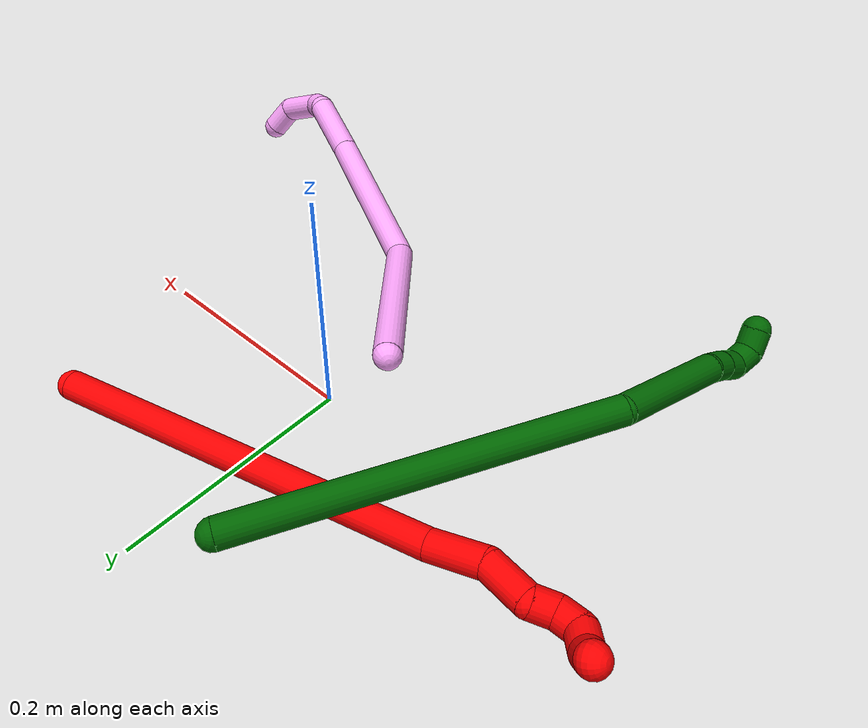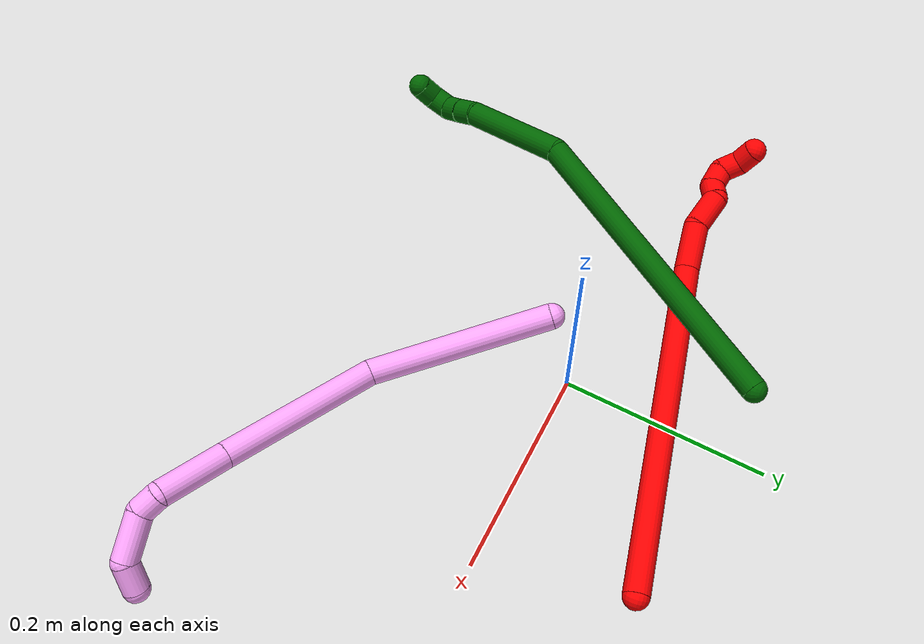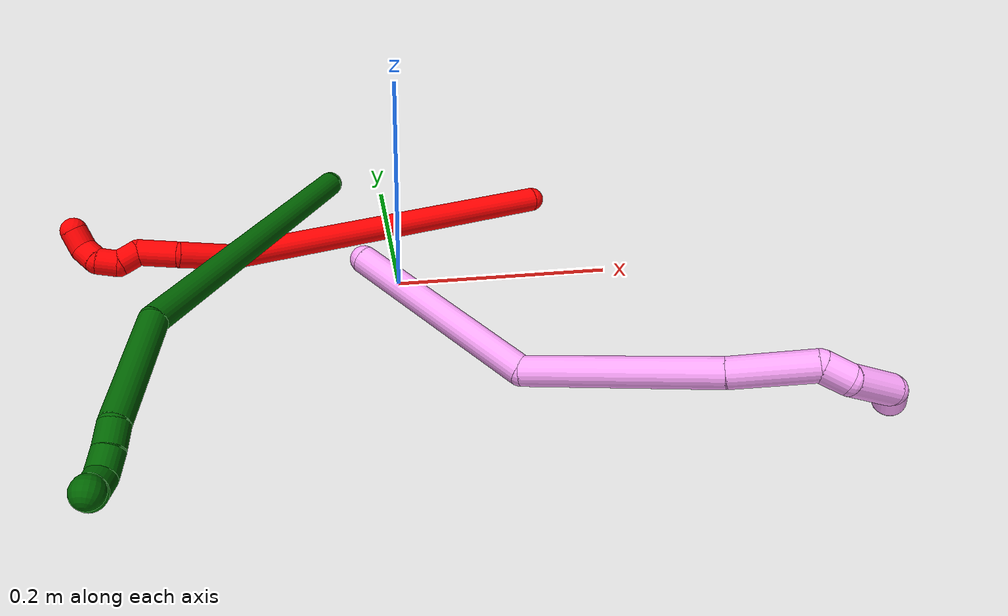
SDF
<sdf version="1.7">
 <world name="default">
  <model name="photoneo_s_sensor">
   <static>1</static>
   <pose>0 0 2 1.57079 1.57079 3.14159</pose>
   <link name="link">
    <inertial><mass>0.1</mass></inertial>
    <sensor name="sensor" type="depth">
     <update_rate>30</update_rate>
     <camera>
      <horizontal_fov>1.22</horizontal_fov>
      <image><width>1920</width><height>1200</height><format>B8G8R8</format></image>
      <clip><near>0.1</near><far>4</far></clip>
      <depth_camera><output>points</output></depth_camera>
     </camera>
     <plugin name="camera_plugin" filename="libgazebo_ros_depth_camera.so">
      <baseline>0.2</baseline>
      <alwaysOn>1</alwaysOn>
      <updateRate>0.0</updateRate>
      <cameraName>camera_ir</cameraName>
      <imageTopicName>/camera/color/image_raw</imageTopicName>
      <cameraInfoTopicName>/camera/color/camera_info</cameraInfoTopicName>
      <depthImageTopicName>/camera/depth/image_raw</depthImageTopicName>
      <depthImageCameraInfoTopicName>/camera/depth/camera_info</depthImageCameraInfoTopicName>
      <pointCloudTopicName>/camera/depth/points</pointCloudTopicName>
      <frameName>fr_optical</frameName>
      <pointCloudCutoff>0.1</pointCloudCutoff>
      <pointCloudCutoffMax>2.0</pointCloudCutoffMax>
      <distortionK1>0</distortionK1>
      <distortionK2>0</distortionK2>
      <distortionK3>0</distortionK3>
      <distortionT1>0</distortionT1>
      <distortionT2>0</distortionT2>
      <CxPrime>0</CxPrime>
      <Cx>0</Cx>
      <Cy>0</Cy>
      <focalLength>0</focalLength>
      <hackBaseline>0</hackBaseline>
     </plugin>
    </sensor>
   </link>
  </model>
  <model name="bin">
   <static>1</static>
   <link name="bottom">
    <collision name="collision-bottom">
     <pose>0 0 -0.01 0 -0 0</pose>
     <geometry><box><size>0.8 0.6 0.02</size></box></geometry>
     <surface>
      <friction><ode><mu>100</mu><mu2>100</mu2></ode></friction>
      <contact><collide_bitmask>65535</collide_bitmask></contact>
     </surface>
    </collision>
   </link>
   <link name="west_wall">
    <collision name="collision-west_wall">
     <pose>-0.41 0 0.1 0 -0 0</pose>
     <geometry><box><size>0.02 0.6 0.2</size></box></geometry>
     <surface>
      <friction><ode><mu>100</mu><mu2>100</mu2></ode></friction>
      <contact><collide_bitmask>65535</collide_bitmask></contact>
     </surface>
    </collision>
   </link>
   <link name="east_wall">
    <collision name="collision-east_wall">
     <pose>0.41 0 0.1 0 -0 0</pose>
     <geometry><box><size>0.02 0.6 0.2</size></box></geometry>
     <surface>
      <friction><ode><mu>100</mu><mu2>100</mu2></ode></friction>
      <contact><collide_bitmask>65535</collide_bitmask></contact>
     </surface>
    </collision>
   </link>
   <link name="south_wall">
    <collision name="collision-south_wall">
     <pose>0 -0.31 0.1 0 -0 0</pose>
     <geometry><box><size>0.8 0.02 0.2</size></box></geometry>
     <surface>
      <friction><ode><mu>100</mu><mu2>100</mu2></ode></friction>
      <contact><collide_bitmask>65535</collide_bitmask></contact>
     </surface>
    </collision>
   </link>
   <link name="north_wall">
    <collision name="collision-north_wall">
     <pose>0 0.31 0.1 0 -0 0</pose>
     <geometry><box><size>0.8 0.02 0.2</size></box></geometry>
     <surface>
      <friction><ode><mu>100</mu><mu2>100</mu2></ode></friction>
      <contact><collide_bitmask>65535</collide_bitmask></contact>
     </surface>
    </collision>
   </link>
  </model>
  <model name="2">
   <static>0</static>
   <link name="2">
    <collision name="collision-cylinder-e_1_1_4">
     <pose>-0.08597 -0.002961 0.142561 0.020765 -0.542554 -0.005776</pose>
     <geometry><cylinder><radius>0.0125</radius><length>0.333006</length></cylinder></geometry>
     <surface>
      <friction><ode><mu>1.16</mu><mu2>1.16</mu2><slip1>0</slip1><slip2>0</slip2></ode></friction>
      <contact><ode><kp>1e+06</kp><kd>1</kd><max_vel>0</max_vel><min_depth>0.001</min_depth></ode></contact>
     </surface>
    </collision>
    <visual name="visual-cylinder-e_1_1_4">
     <pose>-0.08597 -0.002961 0.142561 0.020765 -0.542554 -0.005776</pose>
     <geometry><cylinder><radius>0.0125</radius><length>0.333006</length></cylinder></geometry>
     <material><ambient>1 0 0 1</ambient></material>
    </visual>
    <collision name="collision-cylinder-e_2_4_5">
     <pose>-0.178803 -0.006488 0.30804 0.024716 -0.290923 -0.003621</pose>
     <geometry><cylinder><radius>0.0125</radius><length>0.047859</length></cylinder></geometry>
     <surface>
      <friction><ode><mu>1.16</mu><mu2>1.16</mu2><slip1>0</slip1><slip2>0</slip2></ode></friction>
      <contact><ode><kp>1e+06</kp><kd>1</kd><max_vel>0</max_vel><min_depth>0.001</min_depth></ode></contact>
     </surface>
    </collision>
    <visual name="visual-cylinder-e_2_4_5">
     <pose>-0.178803 -0.006488 0.30804 0.024716 -0.290923 -0.003621</pose>
     <geometry><cylinder><radius>0.0125</radius><length>0.047859</length></cylinder></geometry>
     <material><ambient>1 0 0 1</ambient></material>
    </visual>
    <collision name="collision-cylinder-e_3_5_6">
     <pose>-0.192619 -0.000263 0.347358 -0.392575 -0.373251 0.075059</pose>
     <geometry><cylinder><radius>0.0125</radius><length>0.038129</length></cylinder></geometry>
     <surface>
      <friction><ode><mu>1.16</mu><mu2>1.16</mu2><slip1>0</slip1><slip2>0</slip2></ode></friction>
      <contact><ode><kp>1e+06</kp><kd>1</kd><max_vel>0</max_vel><min_depth>0.001</min_depth></ode></contact>
     </surface>
    </collision>
    <visual name="visual-cylinder-e_3_5_6">
     <pose>-0.192619 -0.000263 0.347358 -0.392575 -0.373251 0.075059</pose>
     <geometry><cylinder><radius>0.0125</radius><length>0.038129</length></cylinder></geometry>
     <material><ambient>1 0 0 1</ambient></material>
    </visual>
    <collision name="collision-cylinder-e_4_6_7">
     <pose>-0.207221 0.004468 0.370305 0.304868 -0.839622 -0.136926</pose>
     <geometry><cylinder><radius>0.0125</radius><length>0.020554</length></cylinder></geometry>
     <surface>
      <friction><ode><mu>1.16</mu><mu2>1.16</mu2><slip1>0</slip1><slip2>0</slip2></ode></friction>
      <contact><ode><kp>1e+06</kp><kd>1</kd><max_vel>0</max_vel><min_depth>0.001</min_depth></ode></contact>
     </surface>
    </collision>
    <visual name="visual-cylinder-e_4_6_7">
     <pose>-0.207221 0.004468 0.370305 0.304868 -0.839622 -0.136926</pose>
     <geometry><cylinder><radius>0.0125</radius><length>0.020554</length></cylinder></geometry>
     <material><ambient>1 0 0 1</ambient></material>
    </visual>
    <collision name="collision-cylinder-e_5_7_8">
     <pose>-0.217759 0.005194 0.386165 -0.290572 -0.288807 0.042547</pose>
     <geometry><cylinder><radius>0.0125</radius><length>0.020283</length></cylinder></geometry>
     <surface>
      <friction><ode><mu>1.16</mu><mu2>1.16</mu2><slip1>0</slip1><slip2>0</slip2></ode></friction>
      <contact><ode><kp>1e+06</kp><kd>1</kd><max_vel>0</max_vel><min_depth>0.001</min_depth></ode></contact>
     </surface>
    </collision>
    <visual name="visual-cylinder-e_5_7_8">
     <pose>-0.217759 0.005194 0.386165 -0.290572 -0.288807 0.042547</pose>
     <geometry><cylinder><radius>0.0125</radius><length>0.020283</length></cylinder></geometry>
     <material><ambient>1 0 0 1</ambient></material>
    </visual>
    <collision name="collision-cylinder-e_6_8_9">
     <pose>-0.219443 0.01565 0.40181 -0.880827 0.120481 -0.056835</pose>
     <geometry><cylinder><radius>0.0125</radius><length>0.020037</length></cylinder></geometry>
     <surface>
      <friction><ode><mu>1.16</mu><mu2>1.16</mu2><slip1>0</slip1><slip2>0</slip2></ode></friction>
      <contact><ode><kp>1e+06</kp><kd>1</kd><max_vel>0</max_vel><min_depth>0.001</min_depth></ode></contact>
     </surface>
    </collision>
    <visual name="visual-cylinder-e_6_8_9">
     <pose>-0.219443 0.01565 0.40181 -0.880827 0.120481 -0.056835</pose>
     <geometry><cylinder><radius>0.0125</radius><length>0.020037</length></cylinder></geometry>
     <material><ambient>1 0 0 1</ambient></material>
    </visual>
    <collision name="collision-cylinder-e_7_9_2">
     <pose>-0.212252 0.027376 0.415142 -0.524962 0.637064 -0.176739</pose>
     <geometry><cylinder><radius>0.0125</radius><length>0.020132</length></cylinder></geometry>
     <surface>
      <friction><ode><mu>1.16</mu><mu2>1.16</mu2><slip1>0</slip1><slip2>0</slip2></ode></friction>
      <contact><ode><kp>1e+06</kp><kd>1</kd><max_vel>0</max_vel><min_depth>0.001</min_depth></ode></contact>
     </surface>
    </collision>
    <visual name="visual-cylinder-e_7_9_2">
     <pose>-0.212252 0.027376 0.415142 -0.524962 0.637064 -0.176739</pose>
     <geometry><cylinder><radius>0.0125</radius><length>0.020132</length></cylinder></geometry>
     <material><ambient>1 0 0 1</ambient></material>
    </visual>
    <collision name="collision-sphere-2">
     <pose>-0.206264 0.031432 0.422144 0 -0 0</pose>
     <geometry><sphere><radius>0.0125</radius></sphere></geometry>
     <surface>
      <friction><ode><mu>1.16</mu><mu2>1.16</mu2><slip1>0</slip1><slip2>0</slip2></ode></friction>
      <contact><ode><kp>1e+06</kp><kd>1</kd><max_vel>0</max_vel><min_depth>0.001</min_depth></ode></contact>
     </surface>
    </collision>
    <visual name="visual-sphere-2">
     <pose>-0.206264 0.031432 0.422144 0 -0 0</pose>
     <geometry><sphere><radius>0.0125</radius></sphere></geometry>
     <material><ambient>1 0 0 1</ambient></material>
    </visual>
    <collision name="collision-sphere-9">
     <pose>-0.218239 0.023321 0.408141 0 -0 0</pose>
     <geometry><sphere><radius>0.0125</radius></sphere></geometry>
     <surface>
      <friction><ode><mu>1.16</mu><mu2>1.16</mu2><slip1>0</slip1><slip2>0</slip2></ode></friction>
      <contact><ode><kp>1e+06</kp><kd>1</kd><max_vel>0</max_vel><min_depth>0.001</min_depth></ode></contact>
     </surface>
    </collision>
    <visual name="visual-sphere-9">
     <pose>-0.218239 0.023321 0.408141 0 -0 0</pose>
     <geometry><sphere><radius>0.0125</radius></sphere></geometry>
     <material><ambient>1 0 0 1</ambient></material>
    </visual>
    <collision name="collision-sphere-4">
     <pose>-0.17194 -0.005921 0.285123 0 -0 0</pose>
     <geometry><sphere><radius>0.0125</radius></sphere></geometry>
     <surface>
      <friction><ode><mu>1.16</mu><mu2>1.16</mu2><slip1>0</slip1><slip2>0</slip2></ode></friction>
      <contact><ode><kp>1e+06</kp><kd>1</kd><max_vel>0</max_vel><min_depth>0.001</min_depth></ode></contact>
     </surface>
    </collision>
    <visual name="visual-sphere-4">
     <pose>-0.17194 -0.005921 0.285123 0 -0 0</pose>
     <geometry><sphere><radius>0.0125</radius></sphere></geometry>
     <material><ambient>1 0 0 1</ambient></material>
    </visual>
    <collision name="collision-sphere-1">
     <geometry><sphere><radius>0.0125</radius></sphere></geometry>
     <surface>
      <friction><ode><mu>1.16</mu><mu2>1.16</mu2><slip1>0</slip1><slip2>0</slip2></ode></friction>
      <contact><ode><kp>1e+06</kp><kd>1</kd><max_vel>0</max_vel><min_depth>0.001</min_depth></ode></contact>
     </surface>
    </collision>
    <visual name="visual-sphere-1">
     <geometry><sphere><radius>0.0125</radius></sphere></geometry>
     <material><ambient>1 0 0 1</ambient></material>
    </visual>
    <collision name="collision-sphere-8">
     <pose>-0.220648 0.007979 0.395479 0 -0 0</pose>
     <geometry><sphere><radius>0.0125</radius></sphere></geometry>
     <surface>
      <friction><ode><mu>1.16</mu><mu2>1.16</mu2><slip1>0</slip1><slip2>0</slip2></ode></friction>
      <contact><ode><kp>1e+06</kp><kd>1</kd><max_vel>0</max_vel><min_depth>0.001</min_depth></ode></contact>
     </surface>
    </collision>
    <visual name="visual-sphere-8">
     <pose>-0.220648 0.007979 0.395479 0 -0 0</pose>
     <geometry><sphere><radius>0.0125</radius></sphere></geometry>
     <material><ambient>1 0 0 1</ambient></material>
    </visual>
    <collision name="collision-sphere-5">
     <pose>-0.185667 -0.007054 0.330956 0 -0 0</pose>
     <geometry><sphere><radius>0.0125</radius></sphere></geometry>
     <surface>
      <friction><ode><mu>1.16</mu><mu2>1.16</mu2><slip1>0</slip1><slip2>0</slip2></ode></friction>
      <contact><ode><kp>1e+06</kp><kd>1</kd><max_vel>0</max_vel><min_depth>0.001</min_depth></ode></contact>
     </surface>
    </collision>
    <visual name="visual-sphere-5">
     <pose>-0.185667 -0.007054 0.330956 0 -0 0</pose>
     <geometry><sphere><radius>0.0125</radius></sphere></geometry>
     <material><ambient>1 0 0 1</ambient></material>
    </visual>
    <collision name="collision-sphere-6">
     <pose>-0.199571 0.006528 0.363759 0 -0 0</pose>
     <geometry><sphere><radius>0.0125</radius></sphere></geometry>
     <surface>
      <friction><ode><mu>1.16</mu><mu2>1.16</mu2><slip1>0</slip1><slip2>0</slip2></ode></friction>
      <contact><ode><kp>1e+06</kp><kd>1</kd><max_vel>0</max_vel><min_depth>0.001</min_depth></ode></contact>
     </surface>
    </collision>
    <visual name="visual-sphere-6">
     <pose>-0.199571 0.006528 0.363759 0 -0 0</pose>
     <geometry><sphere><radius>0.0125</radius></sphere></geometry>
     <material><ambient>1 0 0 1</ambient></material>
    </visual>
    <collision name="collision-sphere-7">
     <pose>-0.214871 0.002408 0.376851 0 -0 0</pose>
     <geometry><sphere><radius>0.0125</radius></sphere></geometry>
     <surface>
      <friction><ode><mu>1.16</mu><mu2>1.16</mu2><slip1>0</slip1><slip2>0</slip2></ode></friction>
      <contact><ode><kp>1e+06</kp><kd>1</kd><max_vel>0</max_vel><min_depth>0.001</min_depth></ode></contact>
     </surface>
    </collision>
    <visual name="visual-sphere-7">
     <pose>-0.214871 0.002408 0.376851 0 -0 0</pose>
     <geometry><sphere><radius>0.0125</radius></sphere></geometry>
     <material><ambient>1 0 0 1</ambient></material>
    </visual>
    <inertial>
     <pose>-0.123752 -0.000489 0.214626 0 -0 0</pose>
     <mass>0.5</mass>
     <inertia>
      <ixx>0.002636</ixx>
      <ixy>0</ixy>
      <ixz>0</ixz>
      <iyy>0.003099</iyy>
      <iyz>0</iyz>
      <izz>0.001686</izz>
     </inertia>
    </inertial>
   </link>
   <pose>0.160036 0.14107 0.01186 -0.322479 -1.00872 0.520316</pose>
  </model>
  <model name="4">
   <static>0</static>
   <link name="4">
    <collision name="collision-cylinder-e_1_1_4">
     <pose>0.009214 0.01263 0.089012 -0.140946 0.102132 -0.007216</pose>
     <geometry><cylinder><radius>0.0125</radius><length>0.180749</length></cylinder></geometry>
     <surface>
      <friction><ode><mu>1.16</mu><mu2>1.16</mu2><slip1>0</slip1><slip2>0</slip2></ode></friction>
      <contact><ode><kp>1e+06</kp><kd>1</kd><max_vel>0</max_vel><min_depth>0.001</min_depth></ode></contact>
     </surface>
    </collision>
    <visual name="visual-cylinder-e_1_1_4">
     <pose>0.009214 0.01263 0.089012 -0.140946 0.102132 -0.007216</pose>
     <geometry><cylinder><radius>0.0125</radius><length>0.180749</length></cylinder></geometry>
     <material><ambient>1 0.65098 0.996078 1</ambient></material>
    </visual>
    <collision name="collision-cylinder-e_2_4_5">
     <pose>0.023633 -0.008778 0.249012 0.447096 0.066019 0.015015</pose>
     <geometry><cylinder><radius>0.0125</radius><length>0.157797</length></cylinder></geometry>
     <surface>
      <friction><ode><mu>1.16</mu><mu2>1.16</mu2><slip1>0</slip1><slip2>0</slip2></ode></friction>
      <contact><ode><kp>1e+06</kp><kd>1</kd><max_vel>0</max_vel><min_depth>0.001</min_depth></ode></contact>
     </surface>
    </collision>
    <visual name="visual-cylinder-e_2_4_5">
     <pose>0.023633 -0.008778 0.249012 0.447096 0.066019 0.015015</pose>
     <geometry><cylinder><radius>0.0125</radius><length>0.157797</length></cylinder></geometry>
     <material><ambient>1 0.65098 0.996078 1</ambient></material>
    </visual>
    <collision name="collision-cylinder-e_3_5_6">
     <pose>0.031493 -0.059762 0.348382 0.538266 0.080153 0.022119</pose>
     <geometry><cylinder><radius>0.0125</radius><length>0.066326</length></cylinder></geometry>
     <surface>
      <friction><ode><mu>1.16</mu><mu2>1.16</mu2><slip1>0</slip1><slip2>0</slip2></ode></friction>
      <contact><ode><kp>1e+06</kp><kd>1</kd><max_vel>0</max_vel><min_depth>0.001</min_depth></ode></contact>
     </surface>
    </collision>
    <visual name="visual-cylinder-e_3_5_6">
     <pose>0.031493 -0.059762 0.348382 0.538266 0.080153 0.022119</pose>
     <geometry><cylinder><radius>0.0125</radius><length>0.066326</length></cylinder></geometry>
     <material><ambient>1 0.65098 0.996078 1</ambient></material>
    </visual>
    <collision name="collision-cylinder-e_4_6_7">
     <pose>0.030962 -0.076972 0.387328 0.024971 -0.292936 -0.003684</pose>
     <geometry><cylinder><radius>0.0125</radius><length>0.022074</length></cylinder></geometry>
     <surface>
      <friction><ode><mu>1.16</mu><mu2>1.16</mu2><slip1>0</slip1><slip2>0</slip2></ode></friction>
      <contact><ode><kp>1e+06</kp><kd>1</kd><max_vel>0</max_vel><min_depth>0.001</min_depth></ode></contact>
     </surface>
    </collision>
    <visual name="visual-cylinder-e_4_6_7">
     <pose>0.030962 -0.076972 0.387328 0.024971 -0.292936 -0.003684</pose>
     <geometry><cylinder><radius>0.0125</radius><length>0.022074</length></cylinder></geometry>
     <material><ambient>1 0.65098 0.996078 1</ambient></material>
    </visual>
    <collision name="collision-cylinder-e_5_7_8">
     <pose>0.012245 -0.083254 0.412739 0.385076 -0.769823 -0.157631</pose>
     <geometry><cylinder><radius>0.0125</radius><length>0.044625</length></cylinder></geometry>
     <surface>
      <friction><ode><mu>1.16</mu><mu2>1.16</mu2><slip1>0</slip1><slip2>0</slip2></ode></friction>
      <contact><ode><kp>1e+06</kp><kd>1</kd><max_vel>0</max_vel><min_depth>0.001</min_depth></ode></contact>
     </surface>
    </collision>
    <visual name="visual-cylinder-e_5_7_8">
     <pose>0.012245 -0.083254 0.412739 0.385076 -0.769823 -0.157631</pose>
     <geometry><cylinder><radius>0.0125</radius><length>0.044625</length></cylinder></geometry>
     <material><ambient>1 0.65098 0.996078 1</ambient></material>
    </visual>
    <collision name="collision-cylinder-e_6_8_2">
     <pose>-0.01728 -0.08813 0.429798 -0.476736 -1.39486 0.401709</pose>
     <geometry><cylinder><radius>0.0125</radius><length>0.02843</length></cylinder></geometry>
     <surface>
      <friction><ode><mu>1.16</mu><mu2>1.16</mu2><slip1>0</slip1><slip2>0</slip2></ode></friction>
      <contact><ode><kp>1e+06</kp><kd>1</kd><max_vel>0</max_vel><min_depth>0.001</min_depth></ode></contact>
     </surface>
    </collision>
    <visual name="visual-cylinder-e_6_8_2">
     <pose>-0.01728 -0.08813 0.429798 -0.476736 -1.39486 0.401709</pose>
     <geometry><cylinder><radius>0.0125</radius><length>0.02843</length></cylinder></geometry>
     <material><ambient>1 0.65098 0.996078 1</ambient></material>
    </visual>
    <collision name="collision-sphere-2">
     <pose>-0.031276 -0.086988 0.432009 0 -0 0</pose>
     <geometry><sphere><radius>0.0125</radius></sphere></geometry>
     <surface>
      <friction><ode><mu>1.16</mu><mu2>1.16</mu2><slip1>0</slip1><slip2>0</slip2></ode></friction>
      <contact><ode><kp>1e+06</kp><kd>1</kd><max_vel>0</max_vel><min_depth>0.001</min_depth></ode></contact>
     </surface>
    </collision>
    <visual name="visual-sphere-2">
     <pose>-0.031276 -0.086988 0.432009 0 -0 0</pose>
     <geometry><sphere><radius>0.0125</radius></sphere></geometry>
     <material><ambient>1 0.65098 0.996078 1</ambient></material>
    </visual>
    <collision name="collision-sphere-4">
     <pose>0.018428 0.025259 0.178024 0 -0 0</pose>
     <geometry><sphere><radius>0.0125</radius></sphere></geometry>
     <surface>
      <friction><ode><mu>1.16</mu><mu2>1.16</mu2><slip1>0</slip1><slip2>0</slip2></ode></friction>
      <contact><ode><kp>1e+06</kp><kd>1</kd><max_vel>0</max_vel><min_depth>0.001</min_depth></ode></contact>
     </surface>
    </collision>
    <visual name="visual-sphere-4">
     <pose>0.018428 0.025259 0.178024 0 -0 0</pose>
     <geometry><sphere><radius>0.0125</radius></sphere></geometry>
     <material><ambient>1 0.65098 0.996078 1</ambient></material>
    </visual>
    <collision name="collision-sphere-1">
     <geometry><sphere><radius>0.0125</radius></sphere></geometry>
     <surface>
      <friction><ode><mu>1.16</mu><mu2>1.16</mu2><slip1>0</slip1><slip2>0</slip2></ode></friction>
      <contact><ode><kp>1e+06</kp><kd>1</kd><max_vel>0</max_vel><min_depth>0.001</min_depth></ode></contact>
     </surface>
    </collision>
    <visual name="visual-sphere-1">
     <geometry><sphere><radius>0.0125</radius></sphere></geometry>
     <material><ambient>1 0.65098 0.996078 1</ambient></material>
    </visual>
    <collision name="collision-sphere-8">
     <pose>-0.003285 -0.089272 0.427587 0 -0 0</pose>
     <geometry><sphere><radius>0.0125</radius></sphere></geometry>
     <surface>
      <friction><ode><mu>1.16</mu><mu2>1.16</mu2><slip1>0</slip1><slip2>0</slip2></ode></friction>
      <contact><ode><kp>1e+06</kp><kd>1</kd><max_vel>0</max_vel><min_depth>0.001</min_depth></ode></contact>
     </surface>
    </collision>
    <visual name="visual-sphere-8">
     <pose>-0.003285 -0.089272 0.427587 0 -0 0</pose>
     <geometry><sphere><radius>0.0125</radius></sphere></geometry>
     <material><ambient>1 0.65098 0.996078 1</ambient></material>
    </visual>
    <collision name="collision-sphere-5">
     <pose>0.028838 -0.042815 0.32 0 -0 0</pose>
     <geometry><sphere><radius>0.0125</radius></sphere></geometry>
     <surface>
      <friction><ode><mu>1.16</mu><mu2>1.16</mu2><slip1>0</slip1><slip2>0</slip2></ode></friction>
      <contact><ode><kp>1e+06</kp><kd>1</kd><max_vel>0</max_vel><min_depth>0.001</min_depth></ode></contact>
     </surface>
    </collision>
    <visual name="visual-sphere-5">
     <pose>0.028838 -0.042815 0.32 0 -0 0</pose>
     <geometry><sphere><radius>0.0125</radius></sphere></geometry>
     <material><ambient>1 0.65098 0.996078 1</ambient></material>
    </visual>
    <collision name="collision-sphere-6">
     <pose>0.034149 -0.076708 0.376765 0 -0 0</pose>
     <geometry><sphere><radius>0.0125</radius></sphere></geometry>
     <surface>
      <friction><ode><mu>1.16</mu><mu2>1.16</mu2><slip1>0</slip1><slip2>0</slip2></ode></friction>
      <contact><ode><kp>1e+06</kp><kd>1</kd><max_vel>0</max_vel><min_depth>0.001</min_depth></ode></contact>
     </surface>
    </collision>
    <visual name="visual-sphere-6">
     <pose>0.034149 -0.076708 0.376765 0 -0 0</pose>
     <geometry><sphere><radius>0.0125</radius></sphere></geometry>
     <material><ambient>1 0.65098 0.996078 1</ambient></material>
    </visual>
    <collision name="collision-sphere-7">
     <pose>0.027774 -0.077236 0.397892 0 -0 0</pose>
     <geometry><sphere><radius>0.0125</radius></sphere></geometry>
     <surface>
      <friction><ode><mu>1.16</mu><mu2>1.16</mu2><slip1>0</slip1><slip2>0</slip2></ode></friction>
      <contact><ode><kp>1e+06</kp><kd>1</kd><max_vel>0</max_vel><min_depth>0.001</min_depth></ode></contact>
     </surface>
    </collision>
    <visual name="visual-sphere-7">
     <pose>0.027774 -0.077236 0.397892 0 -0 0</pose>
     <geometry><sphere><radius>0.0125</radius></sphere></geometry>
     <material><ambient>1 0.65098 0.996078 1</ambient></material>
    </visual>
    <inertial>
     <pose>0.016444 -0.021972 0.235352 0 -0 0</pose>
     <mass>0.5</mass>
     <inertia>
      <ixx>0.000864</ixx>
      <ixy>0</ixy>
      <ixz>0</ixz>
      <iyy>0.000826</iyy>
      <iyz>0</iyz>
      <izz>5.9e-05</izz>
     </inertia>
    </inertial>
   </link>
   <pose>-0.034152 -0.035505 0.048826 -1.81915 -0.750705 -2.08568</pose>
  </model>
  <model name="6">
   <static>0</static>
   <link name="6">
    <collision name="collision-cylinder-e_1_1_4">
     <pose>-0.074488 -0.046364 -0.129935 2.79885 -0.495079 -1.94066</pose>
     <geometry><cylinder><radius>0.0125</radius><length>0.313569</length></cylinder></geometry>
     <surface>
      <friction><ode><mu>1.16</mu><mu2>1.16</mu2><slip1>0</slip1><slip2>0</slip2></ode></friction>
      <contact><ode><kp>1e+06</kp><kd>1</kd><max_vel>0</max_vel><min_depth>0.001</min_depth></ode></contact>
     </surface>
    </collision>
    <visual name="visual-cylinder-e_1_1_4">
     <pose>-0.074488 -0.046364 -0.129935 2.79885 -0.495079 -1.94066</pose>
     <geometry><cylinder><radius>0.0125</radius><length>0.313569</length></cylinder></geometry>
     <material><ambient>0 0.392157 0.003922 1</ambient></material>
    </visual>
    <collision name="collision-cylinder-e_2_4_5">
     <pose>-0.154338 -0.105309 -0.311223 2.90134 -0.101053 -0.793466</pose>
     <geometry><cylinder><radius>0.0125</radius><length>0.106285</length></cylinder></geometry>
     <surface>
      <friction><ode><mu>1.16</mu><mu2>1.16</mu2><slip1>0</slip1><slip2>0</slip2></ode></friction>
      <contact><ode><kp>1e+06</kp><kd>1</kd><max_vel>0</max_vel><min_depth>0.001</min_depth></ode></contact>
     </surface>
    </collision>
    <visual name="visual-cylinder-e_2_4_5">
     <pose>-0.154338 -0.105309 -0.311223 2.90134 -0.101053 -0.793466</pose>
     <geometry><cylinder><radius>0.0125</radius><length>0.106285</length></cylinder></geometry>
     <material><ambient>0 0.392157 0.003922 1</ambient></material>
    </visual>
    <collision name="collision-cylinder-e_3_5_6">
     <pose>-0.159454 -0.118184 -0.37261 3.11231 0.024429 1.39066</pose>
     <geometry><cylinder><radius>0.0125</radius><length>0.020082</length></cylinder></geometry>
     <surface>
      <friction><ode><mu>1.16</mu><mu2>1.16</mu2><slip1>0</slip1><slip2>0</slip2></ode></friction>
      <contact><ode><kp>1e+06</kp><kd>1</kd><max_vel>0</max_vel><min_depth>0.001</min_depth></ode></contact>
     </surface>
    </collision>
    <visual name="visual-cylinder-e_3_5_6">
     <pose>-0.159454 -0.118184 -0.37261 3.11231 0.024429 1.39066</pose>
     <geometry><cylinder><radius>0.0125</radius><length>0.020082</length></cylinder></geometry>
     <material><ambient>0 0.392157 0.003922 1</ambient></material>
    </visual>
    <collision name="collision-cylinder-e_4_6_7">
     <pose>-0.159632 -0.118054 -0.392653 -3.09932 -0.042247 1.57025</pose>
     <geometry><cylinder><radius>0.0125</radius><length>0.020054</length></cylinder></geometry>
     <surface>
      <friction><ode><mu>1.16</mu><mu2>1.16</mu2><slip1>0</slip1><slip2>0</slip2></ode></friction>
      <contact><ode><kp>1e+06</kp><kd>1</kd><max_vel>0</max_vel><min_depth>0.001</min_depth></ode></contact>
     </surface>
    </collision>
    <visual name="visual-cylinder-e_4_6_7">
     <pose>-0.159632 -0.118054 -0.392653 -3.09932 -0.042247 1.57025</pose>
     <geometry><cylinder><radius>0.0125</radius><length>0.020054</length></cylinder></geometry>
     <material><ambient>0 0.392157 0.003922 1</ambient></material>
    </visual>
    <collision name="collision-cylinder-e_5_7_8">
     <pose>-0.162144 -0.123034 -0.410815 2.55634 -0.210323 -0.673975</pose>
     <geometry><cylinder><radius>0.0125</radius><length>0.020004</length></cylinder></geometry>
     <surface>
      <friction><ode><mu>1.16</mu><mu2>1.16</mu2><slip1>0</slip1><slip2>0</slip2></ode></friction>
      <contact><ode><kp>1e+06</kp><kd>1</kd><max_vel>0</max_vel><min_depth>0.001</min_depth></ode></contact>
     </surface>
    </collision>
    <visual name="visual-cylinder-e_5_7_8">
     <pose>-0.162144 -0.123034 -0.410815 2.55634 -0.210323 -0.673975</pose>
     <geometry><cylinder><radius>0.0125</radius><length>0.020004</length></cylinder></geometry>
     <material><ambient>0 0.392157 0.003922 1</ambient></material>
    </visual>
    <collision name="collision-cylinder-e_6_8_2">
     <pose>-0.165336 -0.13795 -0.421862 1.866 -0.110554 -0.149046</pose>
     <geometry><cylinder><radius>0.0125</radius><length>0.020006</length></cylinder></geometry>
     <surface>
      <friction><ode><mu>1.16</mu><mu2>1.16</mu2><slip1>0</slip1><slip2>0</slip2></ode></friction>
      <contact><ode><kp>1e+06</kp><kd>1</kd><max_vel>0</max_vel><min_depth>0.001</min_depth></ode></contact>
     </surface>
    </collision>
    <visual name="visual-cylinder-e_6_8_2">
     <pose>-0.165336 -0.13795 -0.421862 1.866 -0.110554 -0.149046</pose>
     <geometry><cylinder><radius>0.0125</radius><length>0.020006</length></cylinder></geometry>
     <material><ambient>0 0.392157 0.003922 1</ambient></material>
    </visual>
    <collision name="collision-sphere-2">
     <pose>-0.166439 -0.147462 -0.424754 0 -0 0</pose>
     <geometry><sphere><radius>0.0125</radius></sphere></geometry>
     <surface>
      <friction><ode><mu>1.16</mu><mu2>1.16</mu2><slip1>0</slip1><slip2>0</slip2></ode></friction>
      <contact><ode><kp>1e+06</kp><kd>1</kd><max_vel>0</max_vel><min_depth>0.001</min_depth></ode></contact>
     </surface>
    </collision>
    <visual name="visual-sphere-2">
     <pose>-0.166439 -0.147462 -0.424754 0 -0 0</pose>
     <geometry><sphere><radius>0.0125</radius></sphere></geometry>
     <material><ambient>0 0.392157 0.003922 1</ambient></material>
    </visual>
    <collision name="collision-sphere-4">
     <pose>-0.148977 -0.092729 -0.25987 0 -0 0</pose>
     <geometry><sphere><radius>0.0125</radius></sphere></geometry>
     <surface>
      <friction><ode><mu>1.16</mu><mu2>1.16</mu2><slip1>0</slip1><slip2>0</slip2></ode></friction>
      <contact><ode><kp>1e+06</kp><kd>1</kd><max_vel>0</max_vel><min_depth>0.001</min_depth></ode></contact>
     </surface>
    </collision>
    <visual name="visual-sphere-4">
     <pose>-0.148977 -0.092729 -0.25987 0 -0 0</pose>
     <geometry><sphere><radius>0.0125</radius></sphere></geometry>
     <material><ambient>0 0.392157 0.003922 1</ambient></material>
    </visual>
    <collision name="collision-sphere-1">
     <geometry><sphere><radius>0.0125</radius></sphere></geometry>
     <surface>
      <friction><ode><mu>1.16</mu><mu2>1.16</mu2><slip1>0</slip1><slip2>0</slip2></ode></friction>
      <contact><ode><kp>1e+06</kp><kd>1</kd><max_vel>0</max_vel><min_depth>0.001</min_depth></ode></contact>
     </surface>
    </collision>
    <visual name="visual-sphere-1">
     <geometry><sphere><radius>0.0125</radius></sphere></geometry>
     <material><ambient>0 0.392157 0.003922 1</ambient></material>
    </visual>
    <collision name="collision-sphere-8">
     <pose>-0.164232 -0.128438 -0.418969 0 -0 0</pose>
     <geometry><sphere><radius>0.0125</radius></sphere></geometry>
     <surface>
      <friction><ode><mu>1.16</mu><mu2>1.16</mu2><slip1>0</slip1><slip2>0</slip2></ode></friction>
      <contact><ode><kp>1e+06</kp><kd>1</kd><max_vel>0</max_vel><min_depth>0.001</min_depth></ode></contact>
     </surface>
    </collision>
    <visual name="visual-sphere-8">
     <pose>-0.164232 -0.128438 -0.418969 0 -0 0</pose>
     <geometry><sphere><radius>0.0125</radius></sphere></geometry>
     <material><ambient>0 0.392157 0.003922 1</ambient></material>
    </visual>
    <collision name="collision-sphere-5">
     <pose>-0.159699 -0.11789 -0.362576 0 -0 0</pose>
     <geometry><sphere><radius>0.0125</radius></sphere></geometry>
     <surface>
      <friction><ode><mu>1.16</mu><mu2>1.16</mu2><slip1>0</slip1><slip2>0</slip2></ode></friction>
      <contact><ode><kp>1e+06</kp><kd>1</kd><max_vel>0</max_vel><min_depth>0.001</min_depth></ode></contact>
     </surface>
    </collision>
    <visual name="visual-sphere-5">
     <pose>-0.159699 -0.11789 -0.362576 0 -0 0</pose>
     <geometry><sphere><radius>0.0125</radius></sphere></geometry>
     <material><ambient>0 0.392157 0.003922 1</ambient></material>
    </visual>
    <collision name="collision-sphere-6">
     <pose>-0.159209 -0.118478 -0.382644 0 -0 0</pose>
     <geometry><sphere><radius>0.0125</radius></sphere></geometry>
     <surface>
      <friction><ode><mu>1.16</mu><mu2>1.16</mu2><slip1>0</slip1><slip2>0</slip2></ode></friction>
      <contact><ode><kp>1e+06</kp><kd>1</kd><max_vel>0</max_vel><min_depth>0.001</min_depth></ode></contact>
     </surface>
    </collision>
    <visual name="visual-sphere-6">
     <pose>-0.159209 -0.118478 -0.382644 0 -0 0</pose>
     <geometry><sphere><radius>0.0125</radius></sphere></geometry>
     <material><ambient>0 0.392157 0.003922 1</ambient></material>
    </visual>
    <collision name="collision-sphere-7">
     <pose>-0.160056 -0.117631 -0.402662 0 -0 0</pose>
     <geometry><sphere><radius>0.0125</radius></sphere></geometry>
     <surface>
      <friction><ode><mu>1.16</mu><mu2>1.16</mu2><slip1>0</slip1><slip2>0</slip2></ode></friction>
      <contact><ode><kp>1e+06</kp><kd>1</kd><max_vel>0</max_vel><min_depth>0.001</min_depth></ode></contact>
     </surface>
    </collision>
    <visual name="visual-sphere-7">
     <pose>-0.160056 -0.117631 -0.402662 0 -0 0</pose>
     <geometry><sphere><radius>0.0125</radius></sphere></geometry>
     <material><ambient>0 0.392157 0.003922 1</ambient></material>
    </visual>
    <inertial>
     <pose>-0.105432 -0.071386 -0.211674 0 -0 0</pose>
     <mass>0.5</mass>
     <inertia>
      <ixx>-0.002949</ixx>
      <ixy>0</ixy>
      <ixz>0</ixz>
      <iyy>-0.001009</iyy>
      <iyz>0</iyz>
      <izz>0.001995</izz>
     </inertia>
    </inertial>
   </link>
   <pose>-0.057573 0.160506 0.035289 -1.0854 0.353988 0.012083</pose>
  </model>
 </world>
</sdf>
